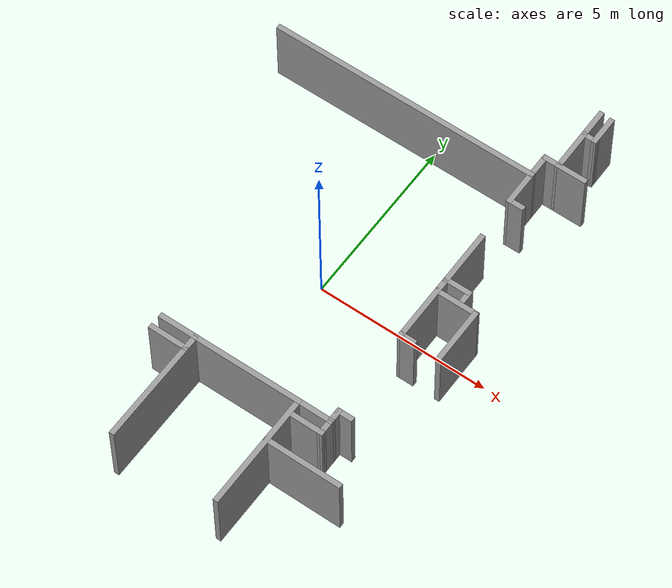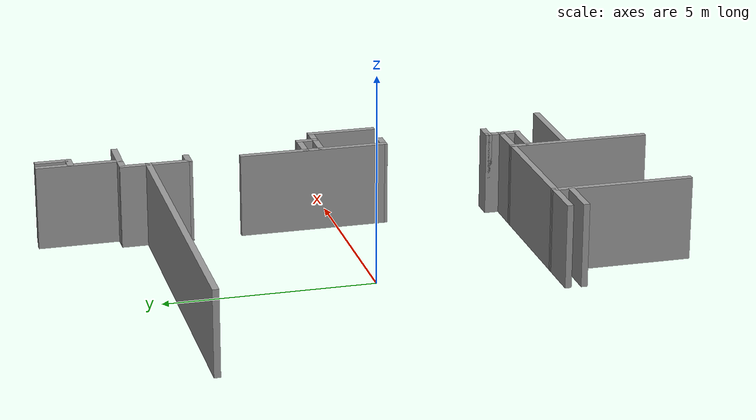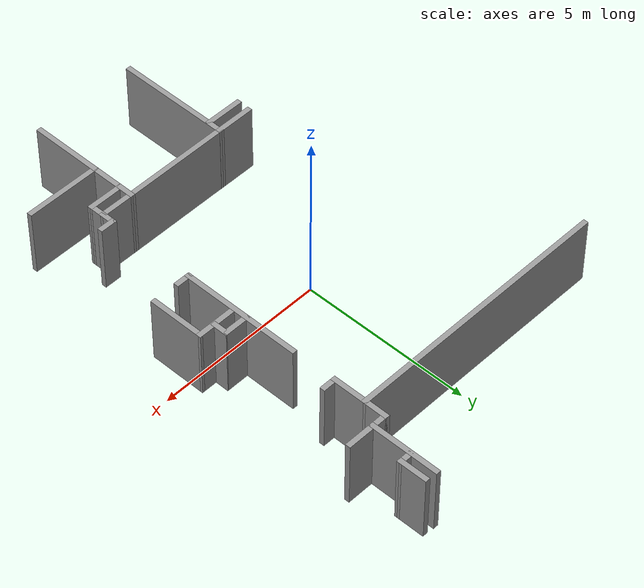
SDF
<sdf version="1.7">
 <model name="HQ">
  <link name="Wall_118">
   <pose>-1.38226 -4.3626 0 0 -0 0</pose>
   <visual name="Wall_118_Visual">
    <pose>0 0 1.25 0 -0 0</pose>
    <geometry><box><size>1.1557 0.15 2</size></box></geometry>
    <material>
     <script><uri>file://media/materials/scripts/gazebo.material</uri><name>Gazebo/Grey</name></script>
     <ambient>1 1 1 1</ambient>
     <shader type="pixel"/>
    </material>
    <meta><layer>0</layer></meta>
   </visual>
   <collision name="Wall_118_Collision">
    <pose>0 0 1.25 0 -0 0</pose>
    <geometry><box><size>1.1557 0.15 2</size></box></geometry>
    <surface>
     <friction>
      <ode><mu>1</mu><mu2>1</mu2><fdir1>0 0 0</fdir1><slip1>0</slip1><slip2>0</slip2></ode>
      <torsional>
       <coefficient>1</coefficient>
       <patch_radius>0</patch_radius>
       <surface_radius>0</surface_radius>
       <use_patch_radius>1</use_patch_radius>
       <ode><slip>0</slip></ode>
      </torsional>
     </friction>
     <bounce><restitution_coefficient>0</restitution_coefficient><threshold>1e+06</threshold></bounce>
     <contact>
      <collide_without_contact>0</collide_without_contact>
      <collide_without_contact_bitmask>1</collide_without_contact_bitmask>
      <collide_bitmask>1</collide_bitmask>
      <ode>
       <soft_cfm>0</soft_cfm>
       <soft_erp>0.2</soft_erp>
       <kp>1e+13</kp>
       <kd>1</kd>
       <max_vel>0.01</max_vel>
       <min_depth>0</min_depth>
      </ode>
      <bullet>
       <split_impulse>1</split_impulse>
       <split_impulse_penetration_threshold>-0.01</split_impulse_penetration_threshold>
       <soft_cfm>0</soft_cfm>
       <soft_erp>0.2</soft_erp>
       <kp>1e+13</kp>
       <kd>1</kd>
      </bullet>
     </contact>
    </surface>
   </collision>
  </link>
  <link name="Wall_120">
   <pose>-1.36439 -3.98262 0 0 0 -3.13781</pose>
   <visual name="Wall_120_Visual">
    <pose>0 0 1.25 0 -0 0</pose>
    <geometry><box><size>1.16116 0.15 2</size></box></geometry>
    <material>
     <script><uri>file://media/materials/scripts/gazebo.material</uri><name>Gazebo/Grey</name></script>
     <ambient>1 1 1 1</ambient>
     <shader type="pixel"/>
    </material>
    <meta><layer>0</layer></meta>
   </visual>
   <collision name="Wall_120_Collision">
    <pose>0 0 1.25 0 -0 0</pose>
    <geometry><box><size>1.16116 0.15 2</size></box></geometry>
    <surface>
     <friction>
      <ode><mu>1</mu><mu2>1</mu2><fdir1>0 0 0</fdir1><slip1>0</slip1><slip2>0</slip2></ode>
      <torsional>
       <coefficient>1</coefficient>
       <patch_radius>0</patch_radius>
       <surface_radius>0</surface_radius>
       <use_patch_radius>1</use_patch_radius>
       <ode><slip>0</slip></ode>
      </torsional>
     </friction>
     <bounce><restitution_coefficient>0</restitution_coefficient><threshold>1e+06</threshold></bounce>
     <contact>
      <collide_without_contact>0</collide_without_contact>
      <collide_without_contact_bitmask>1</collide_without_contact_bitmask>
      <collide_bitmask>1</collide_bitmask>
      <ode>
       <soft_cfm>0</soft_cfm>
       <soft_erp>0.2</soft_erp>
       <kp>1e+13</kp>
       <kd>1</kd>
       <max_vel>0.01</max_vel>
       <min_depth>0</min_depth>
      </ode>
      <bullet>
       <split_impulse>1</split_impulse>
       <split_impulse_penetration_threshold>-0.01</split_impulse_penetration_threshold>
       <soft_cfm>0</soft_cfm>
       <soft_erp>0.2</soft_erp>
       <kp>1e+13</kp>
       <kd>1</kd>
      </bullet>
     </contact>
    </surface>
   </collision>
  </link>
  <link name="Wall_171">
   <pose>3.16808 0.700941 0 0 -0 1.57282</pose>
   <visual name="Wall_171_Visual">
    <pose>0 0 1.25 0 -0 0</pose>
    <geometry><box><size>3.58693 0.15 2</size></box></geometry>
    <material>
     <script><uri>file://media/materials/scripts/gazebo.material</uri><name>Gazebo/Grey</name></script>
     <ambient>1 1 1 1</ambient>
     <shader type="pixel"/>
    </material>
    <meta><layer>0</layer></meta>
   </visual>
   <collision name="Wall_171_Collision">
    <pose>0 0 1.25 0 -0 0</pose>
    <geometry><box><size>3.58693 0.15 2</size></box></geometry>
    <surface>
     <friction>
      <ode><mu>1</mu><mu2>1</mu2><fdir1>0 0 0</fdir1><slip1>0</slip1><slip2>0</slip2></ode>
      <torsional>
       <coefficient>1</coefficient>
       <patch_radius>0</patch_radius>
       <surface_radius>0</surface_radius>
       <use_patch_radius>1</use_patch_radius>
       <ode><slip>0</slip></ode>
      </torsional>
     </friction>
     <bounce><restitution_coefficient>0</restitution_coefficient><threshold>1e+06</threshold></bounce>
     <contact>
      <collide_without_contact>0</collide_without_contact>
      <collide_without_contact_bitmask>1</collide_without_contact_bitmask>
      <collide_bitmask>1</collide_bitmask>
      <ode>
       <soft_cfm>0</soft_cfm>
       <soft_erp>0.2</soft_erp>
       <kp>1e+13</kp>
       <kd>1</kd>
       <max_vel>0.01</max_vel>
       <min_depth>0</min_depth>
      </ode>
      <bullet>
       <split_impulse>1</split_impulse>
       <split_impulse_penetration_threshold>-0.01</split_impulse_penetration_threshold>
       <soft_cfm>0</soft_cfm>
       <soft_erp>0.2</soft_erp>
       <kp>1e+13</kp>
       <kd>1</kd>
      </bullet>
     </contact>
    </surface>
   </collision>
  </link>
  <link name="Wall_18">
   <pose>2.24118 -5.59568 0 0 -0 1.5708</pose>
   <visual name="Wall_18_Visual">
    <pose>0 0 1.25 0 -0 0</pose>
    <geometry><box><size>3.40471 0.15 2</size></box></geometry>
    <material>
     <script><uri>file://media/materials/scripts/gazebo.material</uri><name>Gazebo/Grey</name></script>
     <ambient>1 1 1 1</ambient>
     <shader type="pixel"/>
    </material>
    <meta><layer>0</layer></meta>
   </visual>
   <collision name="Wall_18_Collision">
    <pose>0 0 1.25 0 -0 0</pose>
    <geometry><box><size>3.40471 0.15 2</size></box></geometry>
    <surface>
     <friction>
      <ode><mu>1</mu><mu2>1</mu2><fdir1>0 0 0</fdir1><slip1>0</slip1><slip2>0</slip2></ode>
      <torsional>
       <coefficient>1</coefficient>
       <patch_radius>0</patch_radius>
       <surface_radius>0</surface_radius>
       <use_patch_radius>1</use_patch_radius>
       <ode><slip>0</slip></ode>
      </torsional>
     </friction>
     <bounce><restitution_coefficient>0</restitution_coefficient><threshold>1e+06</threshold></bounce>
     <contact>
      <collide_without_contact>0</collide_without_contact>
      <collide_without_contact_bitmask>1</collide_without_contact_bitmask>
      <collide_bitmask>1</collide_bitmask>
      <ode>
       <soft_cfm>0</soft_cfm>
       <soft_erp>0.2</soft_erp>
       <kp>1e+13</kp>
       <kd>1</kd>
       <max_vel>0.01</max_vel>
       <min_depth>0</min_depth>
      </ode>
      <bullet>
       <split_impulse>1</split_impulse>
       <split_impulse_penetration_threshold>-0.01</split_impulse_penetration_threshold>
       <soft_cfm>0</soft_cfm>
       <soft_erp>0.2</soft_erp>
       <kp>1e+13</kp>
       <kd>1</kd>
      </bullet>
     </contact>
    </surface>
   </collision>
  </link>
  <link name="Wall_19">
   <pose>2.71265 -3.96834 0 0 -0 0</pose>
   <visual name="Wall_19_Visual">
    <pose>0 0 1.25 0 -0 0</pose>
    <geometry><box><size>1.09306 0.15 2</size></box></geometry>
    <material>
     <script><uri>file://media/materials/scripts/gazebo.material</uri><name>Gazebo/Grey</name></script>
     <ambient>1 1 1 1</ambient>
     <shader type="pixel"/>
    </material>
    <meta><layer>0</layer></meta>
   </visual>
   <collision name="Wall_19_Collision">
    <pose>0 0 1.25 0 -0 0</pose>
    <geometry><box><size>1.09306 0.15 2</size></box></geometry>
    <surface>
     <friction>
      <ode><mu>1</mu><mu2>1</mu2><fdir1>0 0 0</fdir1><slip1>0</slip1><slip2>0</slip2></ode>
      <torsional>
       <coefficient>1</coefficient>
       <patch_radius>0</patch_radius>
       <surface_radius>0</surface_radius>
       <use_patch_radius>1</use_patch_radius>
       <ode><slip>0</slip></ode>
      </torsional>
     </friction>
     <bounce><restitution_coefficient>0</restitution_coefficient><threshold>1e+06</threshold></bounce>
     <contact>
      <collide_without_contact>0</collide_without_contact>
      <collide_without_contact_bitmask>1</collide_without_contact_bitmask>
      <collide_bitmask>1</collide_bitmask>
      <ode>
       <soft_cfm>0</soft_cfm>
       <soft_erp>0.2</soft_erp>
       <kp>1e+13</kp>
       <kd>1</kd>
       <max_vel>0.01</max_vel>
       <min_depth>0</min_depth>
      </ode>
      <bullet>
       <split_impulse>1</split_impulse>
       <split_impulse_penetration_threshold>-0.01</split_impulse_penetration_threshold>
       <soft_cfm>0</soft_cfm>
       <soft_erp>0.2</soft_erp>
       <kp>1e+13</kp>
       <kd>1</kd>
      </bullet>
     </contact>
    </surface>
   </collision>
  </link>
  <link name="Wall_192">
   <pose>3.34656 -1.01752 0 0 -0 0</pose>
   <visual name="Wall_192_Visual">
    <pose>0 0 1.25 0 -0 0</pose>
    <geometry><box><size>0.5 0.15 2</size></box></geometry>
    <material>
     <script><uri>file://media/materials/scripts/gazebo.material</uri><name>Gazebo/Grey</name></script>
     <ambient>1 1 1 1</ambient>
     <shader type="pixel"/>
    </material>
    <meta><layer>0</layer></meta>
   </visual>
   <collision name="Wall_192_Collision">
    <pose>0 0 1.25 0 -0 0</pose>
    <geometry><box><size>0.5 0.15 2</size></box></geometry>
    <surface>
     <friction>
      <ode><mu>1</mu><mu2>1</mu2><fdir1>0 0 0</fdir1><slip1>0</slip1><slip2>0</slip2></ode>
      <torsional>
       <coefficient>1</coefficient>
       <patch_radius>0</patch_radius>
       <surface_radius>0</surface_radius>
       <use_patch_radius>1</use_patch_radius>
       <ode><slip>0</slip></ode>
      </torsional>
     </friction>
     <bounce><restitution_coefficient>0</restitution_coefficient><threshold>1e+06</threshold></bounce>
     <contact>
      <collide_without_contact>0</collide_without_contact>
      <collide_without_contact_bitmask>1</collide_without_contact_bitmask>
      <collide_bitmask>1</collide_bitmask>
      <ode>
       <soft_cfm>0</soft_cfm>
       <soft_erp>0.2</soft_erp>
       <kp>1e+13</kp>
       <kd>1</kd>
       <max_vel>0.01</max_vel>
       <min_depth>0</min_depth>
      </ode>
      <bullet>
       <split_impulse>1</split_impulse>
       <split_impulse_penetration_threshold>-0.01</split_impulse_penetration_threshold>
       <soft_cfm>0</soft_cfm>
       <soft_erp>0.2</soft_erp>
       <kp>1e+13</kp>
       <kd>1</kd>
      </bullet>
     </contact>
    </surface>
   </collision>
  </link>
  <link name="Wall_198">
   <pose>3.74081 0.511977 0 0 -0 0</pose>
   <visual name="Wall_198_Visual">
    <pose>0 0 1.25 0 -0 0</pose>
    <geometry><box><size>1.2655 0.15 2</size></box></geometry>
    <material>
     <script><uri>file://media/materials/scripts/gazebo.material</uri><name>Gazebo/Grey</name></script>
     <ambient>1 1 1 1</ambient>
     <shader type="pixel"/>
    </material>
    <meta><layer>0</layer></meta>
   </visual>
   <collision name="Wall_198_Collision">
    <pose>0 0 1.25 0 -0 0</pose>
    <geometry><box><size>1.2655 0.15 2</size></box></geometry>
    <surface>
     <friction>
      <ode><mu>1</mu><mu2>1</mu2><fdir1>0 0 0</fdir1><slip1>0</slip1><slip2>0</slip2></ode>
      <torsional>
       <coefficient>1</coefficient>
       <patch_radius>0</patch_radius>
       <surface_radius>0</surface_radius>
       <use_patch_radius>1</use_patch_radius>
       <ode><slip>0</slip></ode>
      </torsional>
     </friction>
     <bounce><restitution_coefficient>0</restitution_coefficient><threshold>1e+06</threshold></bounce>
     <contact>
      <collide_without_contact>0</collide_without_contact>
      <collide_without_contact_bitmask>1</collide_without_contact_bitmask>
      <collide_bitmask>1</collide_bitmask>
      <ode>
       <soft_cfm>0</soft_cfm>
       <soft_erp>0.2</soft_erp>
       <kp>1e+13</kp>
       <kd>1</kd>
       <max_vel>0.01</max_vel>
       <min_depth>0</min_depth>
      </ode>
      <bullet>
       <split_impulse>1</split_impulse>
       <split_impulse_penetration_threshold>-0.01</split_impulse_penetration_threshold>
       <soft_cfm>0</soft_cfm>
       <soft_erp>0.2</soft_erp>
       <kp>1e+13</kp>
       <kd>1</kd>
      </bullet>
     </contact>
    </surface>
   </collision>
  </link>
  <link name="Wall_20">
   <pose>3.18412 -3.80105 0 0 -0 1.5708</pose>
   <visual name="Wall_20_Visual">
    <pose>0 0 1.25 0 -0 0</pose>
    <geometry><box><size>0.484593 0.15 2</size></box></geometry>
    <material>
     <script><uri>file://media/materials/scripts/gazebo.material</uri><name>Gazebo/Grey</name></script>
     <ambient>1 1 1 1</ambient>
     <shader type="pixel"/>
    </material>
    <meta><layer>0</layer></meta>
   </visual>
   <collision name="Wall_20_Collision">
    <pose>0 0 1.25 0 -0 0</pose>
    <geometry><box><size>0.484593 0.15 2</size></box></geometry>
    <surface>
     <friction>
      <ode><mu>1</mu><mu2>1</mu2><fdir1>0 0 0</fdir1><slip1>0</slip1><slip2>0</slip2></ode>
      <torsional>
       <coefficient>1</coefficient>
       <patch_radius>0</patch_radius>
       <surface_radius>0</surface_radius>
       <use_patch_radius>1</use_patch_radius>
       <ode><slip>0</slip></ode>
      </torsional>
     </friction>
     <bounce><restitution_coefficient>0</restitution_coefficient><threshold>1e+06</threshold></bounce>
     <contact>
      <collide_without_contact>0</collide_without_contact>
      <collide_without_contact_bitmask>1</collide_without_contact_bitmask>
      <collide_bitmask>1</collide_bitmask>
      <ode>
       <soft_cfm>0</soft_cfm>
       <soft_erp>0.2</soft_erp>
       <kp>1e+13</kp>
       <kd>1</kd>
       <max_vel>0.01</max_vel>
       <min_depth>0</min_depth>
      </ode>
      <bullet>
       <split_impulse>1</split_impulse>
       <split_impulse_penetration_threshold>-0.01</split_impulse_penetration_threshold>
       <soft_cfm>0</soft_cfm>
       <soft_erp>0.2</soft_erp>
       <kp>1e+13</kp>
       <kd>1</kd>
      </bullet>
     </contact>
    </surface>
   </collision>
  </link>
  <link name="Wall_202">
   <pose>4.29995 -0.246283 0 0 0 -1.56896</pose>
   <visual name="Wall_202_Visual">
    <pose>0 0 1.25 0 -0 0</pose>
    <geometry><box><size>1.66652 0.15 2</size></box></geometry>
    <material>
     <script><uri>file://media/materials/scripts/gazebo.material</uri><name>Gazebo/Grey</name></script>
     <ambient>1 1 1 1</ambient>
     <shader type="pixel"/>
    </material>
    <meta><layer>0</layer></meta>
   </visual>
   <collision name="Wall_202_Collision">
    <pose>0 0 1.25 0 -0 0</pose>
    <geometry><box><size>1.66652 0.15 2</size></box></geometry>
    <surface>
     <friction>
      <ode><mu>1</mu><mu2>1</mu2><fdir1>0 0 0</fdir1><slip1>0</slip1><slip2>0</slip2></ode>
      <torsional>
       <coefficient>1</coefficient>
       <patch_radius>0</patch_radius>
       <surface_radius>0</surface_radius>
       <use_patch_radius>1</use_patch_radius>
       <ode><slip>0</slip></ode>
      </torsional>
     </friction>
     <bounce><restitution_coefficient>0</restitution_coefficient><threshold>1e+06</threshold></bounce>
     <contact>
      <collide_without_contact>0</collide_without_contact>
      <collide_without_contact_bitmask>1</collide_without_contact_bitmask>
      <collide_bitmask>1</collide_bitmask>
      <ode>
       <soft_cfm>0</soft_cfm>
       <soft_erp>0.2</soft_erp>
       <kp>1e+13</kp>
       <kd>1</kd>
       <max_vel>0.01</max_vel>
       <min_depth>0</min_depth>
      </ode>
      <bullet>
       <split_impulse>1</split_impulse>
       <split_impulse_penetration_threshold>-0.01</split_impulse_penetration_threshold>
       <soft_cfm>0</soft_cfm>
       <soft_erp>0.2</soft_erp>
       <kp>1e+13</kp>
       <kd>1</kd>
      </bullet>
     </contact>
    </surface>
   </collision>
  </link>
  <link name="Wall_204">
   <pose>3.49517 0.905114 0 0 -0 0</pose>
   <inertial>
    <inertia><ixx>0</ixx><ixy>0</ixy><ixz>0</ixz><iyy>0</iyy><iyz>0</iyz><izz>0</izz></inertia>
    <mass>0</mass>
   </inertial>
   <visual name="Wall_204_Visual">
    <pose>0 0 1.25 0 -0 0</pose>
    <geometry><box><size>0.77819 0.15 2</size></box></geometry>
    <material>
     <script><uri>file://media/materials/scripts/gazebo.material</uri><name>Gazebo/Grey</name></script>
     <ambient>1 1 1 1</ambient>
     <shader type="pixel"/>
    </material>
    <meta><layer>0</layer></meta>
   </visual>
   <collision name="Wall_204_Collision">
    <pose>0 0 1.25 0 -0 0</pose>
    <geometry><box><size>0.77819 0.15 2</size></box></geometry>
    <surface>
     <friction>
      <ode><mu>1</mu><mu2>1</mu2><fdir1>0 0 0</fdir1><slip1>0</slip1><slip2>0</slip2></ode>
      <torsional>
       <coefficient>1</coefficient>
       <patch_radius>0</patch_radius>
       <surface_radius>0</surface_radius>
       <use_patch_radius>1</use_patch_radius>
       <ode><slip>0</slip></ode>
      </torsional>
     </friction>
     <bounce><restitution_coefficient>0</restitution_coefficient><threshold>1e+06</threshold></bounce>
     <contact>
      <collide_without_contact>0</collide_without_contact>
      <collide_without_contact_bitmask>1</collide_without_contact_bitmask>
      <collide_bitmask>1</collide_bitmask>
      <ode>
       <soft_cfm>0</soft_cfm>
       <soft_erp>0.2</soft_erp>
       <kp>1e+13</kp>
       <kd>1</kd>
       <max_vel>0.01</max_vel>
       <min_depth>0</min_depth>
      </ode>
      <bullet>
       <split_impulse>1</split_impulse>
       <split_impulse_penetration_threshold>-0.01</split_impulse_penetration_threshold>
       <soft_cfm>0</soft_cfm>
       <soft_erp>0.2</soft_erp>
       <kp>1e+13</kp>
       <kd>1</kd>
      </bullet>
     </contact>
    </surface>
   </collision>
  </link>
  <link name="Wall_205">
   <pose>3.83822 0.719294 0 0 0 -1.5708</pose>
   <visual name="Wall_205_Visual">
    <pose>0 0 1.25 0 -0 0</pose>
    <geometry><box><size>0.52164 0.15 2</size></box></geometry>
    <material>
     <script><uri>file://media/materials/scripts/gazebo.material</uri><name>Gazebo/Grey</name></script>
     <ambient>1 1 1 1</ambient>
     <shader type="pixel"/>
    </material>
    <meta><layer>0</layer></meta>
   </visual>
   <collision name="Wall_205_Collision">
    <pose>0 0 1.25 0 -0 0</pose>
    <geometry><box><size>0.52164 0.15 2</size></box></geometry>
    <surface>
     <friction>
      <ode><mu>1</mu><mu2>1</mu2><fdir1>0 0 0</fdir1><slip1>0</slip1><slip2>0</slip2></ode>
      <torsional>
       <coefficient>1</coefficient>
       <patch_radius>0</patch_radius>
       <surface_radius>0</surface_radius>
       <use_patch_radius>1</use_patch_radius>
       <ode><slip>0</slip></ode>
      </torsional>
     </friction>
     <bounce><restitution_coefficient>0</restitution_coefficient><threshold>1e+06</threshold></bounce>
     <contact>
      <collide_without_contact>0</collide_without_contact>
      <collide_without_contact_bitmask>1</collide_without_contact_bitmask>
      <collide_bitmask>1</collide_bitmask>
      <ode>
       <soft_cfm>0</soft_cfm>
       <soft_erp>0.2</soft_erp>
       <kp>1e+13</kp>
       <kd>1</kd>
       <max_vel>0.01</max_vel>
       <min_depth>0</min_depth>
      </ode>
      <bullet>
       <split_impulse>1</split_impulse>
       <split_impulse_penetration_threshold>-0.01</split_impulse_penetration_threshold>
       <soft_cfm>0</soft_cfm>
       <soft_erp>0.2</soft_erp>
       <kp>1e+13</kp>
       <kd>1</kd>
      </bullet>
     </contact>
    </surface>
   </collision>
  </link>
  <link name="Wall_217">
   <pose>3.12789 4.20563 0 0 0 -1.56588</pose>
   <visual name="Wall_217_Visual">
    <pose>0 0 1.25 0 -0 0</pose>
    <geometry><box><size>1.10451 0.15 2</size></box></geometry>
    <material>
     <script><uri>file://media/materials/scripts/gazebo.material</uri><name>Gazebo/Grey</name></script>
     <ambient>1 1 1 1</ambient>
     <shader type="pixel"/>
    </material>
    <meta><layer>0</layer></meta>
   </visual>
   <collision name="Wall_217_Collision">
    <pose>0 0 1.25 0 -0 0</pose>
    <geometry><box><size>1.10451 0.15 2</size></box></geometry>
    <surface>
     <friction>
      <ode><mu>1</mu><mu2>1</mu2><fdir1>0 0 0</fdir1><slip1>0</slip1><slip2>0</slip2></ode>
      <torsional>
       <coefficient>1</coefficient>
       <patch_radius>0</patch_radius>
       <surface_radius>0</surface_radius>
       <use_patch_radius>1</use_patch_radius>
       <ode><slip>0</slip></ode>
      </torsional>
     </friction>
     <bounce><restitution_coefficient>0</restitution_coefficient><threshold>1e+06</threshold></bounce>
     <contact>
      <collide_without_contact>0</collide_without_contact>
      <collide_without_contact_bitmask>1</collide_without_contact_bitmask>
      <collide_bitmask>1</collide_bitmask>
      <ode>
       <soft_cfm>0</soft_cfm>
       <soft_erp>0.2</soft_erp>
       <kp>1e+13</kp>
       <kd>1</kd>
       <max_vel>0.01</max_vel>
       <min_depth>0</min_depth>
      </ode>
      <bullet>
       <split_impulse>1</split_impulse>
       <split_impulse_penetration_threshold>-0.01</split_impulse_penetration_threshold>
       <soft_cfm>0</soft_cfm>
       <soft_erp>0.2</soft_erp>
       <kp>1e+13</kp>
       <kd>1</kd>
      </bullet>
     </contact>
    </surface>
   </collision>
  </link>
  <link name="Wall_220">
   <pose>3.30523 3.72838 0 0 -0 0</pose>
   <visual name="Wall_220_Visual">
    <pose>0 0 1.25 0 -0 0</pose>
    <geometry><box><size>0.5 0.15 2</size></box></geometry>
    <material>
     <script><uri>file://media/materials/scripts/gazebo.material</uri><name>Gazebo/Grey</name></script>
     <ambient>1 1 1 1</ambient>
     <shader type="pixel"/>
    </material>
    <meta><layer>0</layer></meta>
   </visual>
   <collision name="Wall_220_Collision">
    <pose>0 0 1.25 0 -0 0</pose>
    <geometry><box><size>0.5 0.15 2</size></box></geometry>
    <surface>
     <friction>
      <ode><mu>1</mu><mu2>1</mu2><fdir1>0 0 0</fdir1><slip1>0</slip1><slip2>0</slip2></ode>
      <torsional>
       <coefficient>1</coefficient>
       <patch_radius>0</patch_radius>
       <surface_radius>0</surface_radius>
       <use_patch_radius>1</use_patch_radius>
       <ode><slip>0</slip></ode>
      </torsional>
     </friction>
     <bounce><restitution_coefficient>0</restitution_coefficient><threshold>1e+06</threshold></bounce>
     <contact>
      <collide_without_contact>0</collide_without_contact>
      <collide_without_contact_bitmask>1</collide_without_contact_bitmask>
      <collide_bitmask>1</collide_bitmask>
      <ode>
       <soft_cfm>0</soft_cfm>
       <soft_erp>0.2</soft_erp>
       <kp>1e+13</kp>
       <kd>1</kd>
       <max_vel>0.01</max_vel>
       <min_depth>0</min_depth>
      </ode>
      <bullet>
       <split_impulse>1</split_impulse>
       <split_impulse_penetration_threshold>-0.01</split_impulse_penetration_threshold>
       <soft_cfm>0</soft_cfm>
       <soft_erp>0.2</soft_erp>
       <kp>1e+13</kp>
       <kd>1</kd>
      </bullet>
     </contact>
    </surface>
   </collision>
  </link>
  <link name="Wall_224">
   <pose>3.91789 5.30063 0 0 0 -0.005876</pose>
   <visual name="Wall_224_Visual">
    <pose>0 0 1.25 0 -0 0</pose>
    <geometry><box><size>0.914701 0.15 2</size></box></geometry>
    <material>
     <script><uri>file://media/materials/scripts/gazebo.material</uri><name>Gazebo/Grey</name></script>
     <ambient>1 1 1 1</ambient>
     <shader type="pixel"/>
    </material>
    <meta><layer>0</layer></meta>
   </visual>
   <collision name="Wall_224_Collision">
    <pose>0 0 1.25 0 -0 0</pose>
    <geometry><box><size>0.914701 0.15 2</size></box></geometry>
    <surface>
     <friction>
      <ode><mu>1</mu><mu2>1</mu2><fdir1>0 0 0</fdir1><slip1>0</slip1><slip2>0</slip2></ode>
      <torsional>
       <coefficient>1</coefficient>
       <patch_radius>0</patch_radius>
       <surface_radius>0</surface_radius>
       <use_patch_radius>1</use_patch_radius>
       <ode><slip>0</slip></ode>
      </torsional>
     </friction>
     <bounce><restitution_coefficient>0</restitution_coefficient><threshold>1e+06</threshold></bounce>
     <contact>
      <collide_without_contact>0</collide_without_contact>
      <collide_without_contact_bitmask>1</collide_without_contact_bitmask>
      <collide_bitmask>1</collide_bitmask>
      <ode>
       <soft_cfm>0</soft_cfm>
       <soft_erp>0.2</soft_erp>
       <kp>1e+13</kp>
       <kd>1</kd>
       <max_vel>0.01</max_vel>
       <min_depth>0</min_depth>
      </ode>
      <bullet>
       <split_impulse>1</split_impulse>
       <split_impulse_penetration_threshold>-0.01</split_impulse_penetration_threshold>
       <soft_cfm>0</soft_cfm>
       <soft_erp>0.2</soft_erp>
       <kp>1e+13</kp>
       <kd>1</kd>
      </bullet>
     </contact>
    </surface>
   </collision>
  </link>
  <link name="Wall_23">
   <pose>3.3052 -5.26109 0 0 -0 3.14159</pose>
   <visual name="Wall_23_Visual">
    <pose>0 0 1.25 0 -0 0</pose>
    <geometry><box><size>2.25 0.15 2</size></box></geometry>
    <material>
     <script><uri>file://media/materials/scripts/gazebo.material</uri><name>Gazebo/Grey</name></script>
     <ambient>1 1 1 1</ambient>
     <shader type="pixel"/>
    </material>
    <meta><layer>0</layer></meta>
   </visual>
   <collision name="Wall_23_Collision">
    <pose>0 0 1.25 0 -0 0</pose>
    <geometry><box><size>2.25 0.15 2</size></box></geometry>
    <surface>
     <friction>
      <ode><mu>1</mu><mu2>1</mu2><fdir1>0 0 0</fdir1><slip1>0</slip1><slip2>0</slip2></ode>
      <torsional>
       <coefficient>1</coefficient>
       <patch_radius>0</patch_radius>
       <surface_radius>0</surface_radius>
       <use_patch_radius>1</use_patch_radius>
       <ode><slip>0</slip></ode>
      </torsional>
     </friction>
     <bounce><restitution_coefficient>0</restitution_coefficient><threshold>1e+06</threshold></bounce>
     <contact>
      <collide_without_contact>0</collide_without_contact>
      <collide_without_contact_bitmask>1</collide_without_contact_bitmask>
      <collide_bitmask>1</collide_bitmask>
      <ode>
       <soft_cfm>0</soft_cfm>
       <soft_erp>0.2</soft_erp>
       <kp>1e+13</kp>
       <kd>1</kd>
       <max_vel>0.01</max_vel>
       <min_depth>0</min_depth>
      </ode>
      <bullet>
       <split_impulse>1</split_impulse>
       <split_impulse_penetration_threshold>-0.01</split_impulse_penetration_threshold>
       <soft_cfm>0</soft_cfm>
       <soft_erp>0.2</soft_erp>
       <kp>1e+13</kp>
       <kd>1</kd>
      </bullet>
     </contact>
    </surface>
   </collision>
  </link>
  <link name="Wall_235">
   <pose>3.35912 -3.63375 0 0 -0 0</pose>
   <visual name="Wall_235_Visual">
    <pose>0 0 1.25 0 -0 0</pose>
    <geometry><box><size>0.5 0.15 2</size></box></geometry>
    <material>
     <script><uri>file://media/materials/scripts/gazebo.material</uri><name>Gazebo/Grey</name></script>
     <ambient>1 1 1 1</ambient>
     <shader type="pixel"/>
    </material>
    <meta><layer>0</layer></meta>
   </visual>
   <collision name="Wall_235_Collision">
    <pose>0 0 1.25 0 -0 0</pose>
    <geometry><box><size>0.5 0.15 2</size></box></geometry>
    <surface>
     <friction>
      <ode><mu>1</mu><mu2>1</mu2><fdir1>0 0 0</fdir1><slip1>0</slip1><slip2>0</slip2></ode>
      <torsional>
       <coefficient>1</coefficient>
       <patch_radius>0</patch_radius>
       <surface_radius>0</surface_radius>
       <use_patch_radius>1</use_patch_radius>
       <ode><slip>0</slip></ode>
      </torsional>
     </friction>
     <bounce><restitution_coefficient>0</restitution_coefficient><threshold>1e+06</threshold></bounce>
     <contact>
      <collide_without_contact>0</collide_without_contact>
      <collide_without_contact_bitmask>1</collide_without_contact_bitmask>
      <collide_bitmask>1</collide_bitmask>
      <ode>
       <soft_cfm>0</soft_cfm>
       <soft_erp>0.2</soft_erp>
       <kp>1e+13</kp>
       <kd>1</kd>
       <max_vel>0.01</max_vel>
       <min_depth>0</min_depth>
      </ode>
      <bullet>
       <split_impulse>1</split_impulse>
       <split_impulse_penetration_threshold>-0.01</split_impulse_penetration_threshold>
       <soft_cfm>0</soft_cfm>
       <soft_erp>0.2</soft_erp>
       <kp>1e+13</kp>
       <kd>1</kd>
      </bullet>
     </contact>
    </surface>
   </collision>
  </link>
  <link name="Wall_25">
   <pose>0.691182 -3.97576 0 0 0 -3.13681</pose>
   <visual name="Wall_25_Visual">
    <pose>0 0 1.25 0 -0 0</pose>
    <geometry><box><size>3.25 0.15 2</size></box></geometry>
    <material>
     <script><uri>file://media/materials/scripts/gazebo.material</uri><name>Gazebo/Grey</name></script>
     <ambient>1 1 1 1</ambient>
     <shader type="pixel"/>
    </material>
    <meta><layer>0</layer></meta>
   </visual>
   <collision name="Wall_25_Collision">
    <pose>0 0 1.25 0 -0 0</pose>
    <geometry><box><size>3.25 0.15 2</size></box></geometry>
    <surface>
     <friction>
      <ode><mu>1</mu><mu2>1</mu2><fdir1>0 0 0</fdir1><slip1>0</slip1><slip2>0</slip2></ode>
      <torsional>
       <coefficient>1</coefficient>
       <patch_radius>0</patch_radius>
       <surface_radius>0</surface_radius>
       <use_patch_radius>1</use_patch_radius>
       <ode><slip>0</slip></ode>
      </torsional>
     </friction>
     <bounce><restitution_coefficient>0</restitution_coefficient><threshold>1e+06</threshold></bounce>
     <contact>
      <collide_without_contact>0</collide_without_contact>
      <collide_without_contact_bitmask>1</collide_without_contact_bitmask>
      <collide_bitmask>1</collide_bitmask>
      <ode>
       <soft_cfm>0</soft_cfm>
       <soft_erp>0.2</soft_erp>
       <kp>1e+13</kp>
       <kd>1</kd>
       <max_vel>0.01</max_vel>
       <min_depth>0</min_depth>
      </ode>
      <bullet>
       <split_impulse>1</split_impulse>
       <split_impulse_penetration_threshold>-0.01</split_impulse_penetration_threshold>
       <soft_cfm>0</soft_cfm>
       <soft_erp>0.2</soft_erp>
       <kp>1e+13</kp>
       <kd>1</kd>
      </bullet>
     </contact>
    </surface>
   </collision>
  </link>
  <link name="Wall_26">
   <pose>-0.860111 -5.60044 0 0 0 -1.57159</pose>
   <visual name="Wall_26_Visual">
    <pose>0 0 1.25 0 -0 0</pose>
    <geometry><box><size>3.38946 0.15 2</size></box></geometry>
    <material>
     <script><uri>file://media/materials/scripts/gazebo.material</uri><name>Gazebo/Grey</name></script>
     <ambient>1 1 1 1</ambient>
     <shader type="pixel"/>
    </material>
    <meta><layer>0</layer></meta>
   </visual>
   <collision name="Wall_26_Collision">
    <pose>0 0 1.25 0 -0 0</pose>
    <geometry><box><size>3.38946 0.15 2</size></box></geometry>
    <surface>
     <friction>
      <ode><mu>1</mu><mu2>1</mu2><fdir1>0 0 0</fdir1><slip1>0</slip1><slip2>0</slip2></ode>
      <torsional>
       <coefficient>1</coefficient>
       <patch_radius>0</patch_radius>
       <surface_radius>0</surface_radius>
       <use_patch_radius>1</use_patch_radius>
       <ode><slip>0</slip></ode>
      </torsional>
     </friction>
     <bounce><restitution_coefficient>0</restitution_coefficient><threshold>1e+06</threshold></bounce>
     <contact>
      <collide_without_contact>0</collide_without_contact>
      <collide_without_contact_bitmask>1</collide_without_contact_bitmask>
      <collide_bitmask>1</collide_bitmask>
      <ode>
       <soft_cfm>0</soft_cfm>
       <soft_erp>0.2</soft_erp>
       <kp>1e+13</kp>
       <kd>1</kd>
       <max_vel>0.01</max_vel>
       <min_depth>0</min_depth>
      </ode>
      <bullet>
       <split_impulse>1</split_impulse>
       <split_impulse_penetration_threshold>-0.01</split_impulse_penetration_threshold>
       <soft_cfm>0</soft_cfm>
       <soft_erp>0.2</soft_erp>
       <kp>1e+13</kp>
       <kd>1</kd>
      </bullet>
     </contact>
    </surface>
   </collision>
  </link>
  <link name="Wall_260">
   <pose>3.70877 6.46205 0 0 -0 0</pose>
   <visual name="Wall_260_Visual">
    <pose>0 0 1.25 0 -0 0</pose>
    <geometry><box><size>0.453029 0.15 2</size></box></geometry>
    <material>
     <script><uri>file://media/materials/scripts/gazebo.material</uri><name>Gazebo/Grey</name></script>
     <ambient>1 1 1 1</ambient>
     <shader type="pixel"/>
    </material>
    <meta><layer>0</layer></meta>
   </visual>
   <collision name="Wall_260_Collision">
    <pose>0 0 1.25 0 -0 0</pose>
    <geometry><box><size>0.453029 0.15 2</size></box></geometry>
    <surface>
     <friction>
      <ode><mu>1</mu><mu2>1</mu2><fdir1>0 0 0</fdir1><slip1>0</slip1><slip2>0</slip2></ode>
      <torsional>
       <coefficient>1</coefficient>
       <patch_radius>0</patch_radius>
       <surface_radius>0</surface_radius>
       <use_patch_radius>1</use_patch_radius>
       <ode><slip>0</slip></ode>
      </torsional>
     </friction>
     <bounce><restitution_coefficient>0</restitution_coefficient><threshold>1e+06</threshold></bounce>
     <contact>
      <collide_without_contact>0</collide_without_contact>
      <collide_without_contact_bitmask>1</collide_without_contact_bitmask>
      <collide_bitmask>1</collide_bitmask>
      <ode>
       <soft_cfm>0</soft_cfm>
       <soft_erp>0.2</soft_erp>
       <kp>1e+13</kp>
       <kd>1</kd>
       <max_vel>0.01</max_vel>
       <min_depth>0</min_depth>
      </ode>
      <bullet>
       <split_impulse>1</split_impulse>
       <split_impulse_penetration_threshold>-0.01</split_impulse_penetration_threshold>
       <soft_cfm>0</soft_cfm>
       <soft_erp>0.2</soft_erp>
       <kp>1e+13</kp>
       <kd>1</kd>
      </bullet>
     </contact>
    </surface>
   </collision>
  </link>
  <link name="Wall_261">
   <pose>3.85743 6.82511 0 0 -0 1.57867</pose>
   <visual name="Wall_261_Visual">
    <pose>0 0 1.25 0 -0 0</pose>
    <geometry><box><size>0.876329 0.15 2</size></box></geometry>
    <material>
     <script><uri>file://media/materials/scripts/gazebo.material</uri><name>Gazebo/Grey</name></script>
     <ambient>1 1 1 1</ambient>
     <shader type="pixel"/>
    </material>
    <meta><layer>0</layer></meta>
   </visual>
   <collision name="Wall_261_Collision">
    <pose>0 0 1.25 0 -0 0</pose>
    <geometry><box><size>0.876329 0.15 2</size></box></geometry>
    <surface>
     <friction>
      <ode><mu>1</mu><mu2>1</mu2><fdir1>0 0 0</fdir1><slip1>0</slip1><slip2>0</slip2></ode>
      <torsional>
       <coefficient>1</coefficient>
       <patch_radius>0</patch_radius>
       <surface_radius>0</surface_radius>
       <use_patch_radius>1</use_patch_radius>
       <ode><slip>0</slip></ode>
      </torsional>
     </friction>
     <bounce><restitution_coefficient>0</restitution_coefficient><threshold>1e+06</threshold></bounce>
     <contact>
      <collide_without_contact>0</collide_without_contact>
      <collide_without_contact_bitmask>1</collide_without_contact_bitmask>
      <collide_bitmask>1</collide_bitmask>
      <ode>
       <soft_cfm>0</soft_cfm>
       <soft_erp>0.2</soft_erp>
       <kp>1e+13</kp>
       <kd>1</kd>
       <max_vel>0.01</max_vel>
       <min_depth>0</min_depth>
      </ode>
      <bullet>
       <split_impulse>1</split_impulse>
       <split_impulse_penetration_threshold>-0.01</split_impulse_penetration_threshold>
       <soft_cfm>0</soft_cfm>
       <soft_erp>0.2</soft_erp>
       <kp>1e+13</kp>
       <kd>1</kd>
      </bullet>
     </contact>
    </surface>
   </collision>
  </link>
  <link name="Wall_265">
   <pose>3.18508 -4.16059 0 0 0 -1.56585</pose>
   <visual name="Wall_265_Visual">
    <pose>0 0 1.25 0 -0 0</pose>
    <geometry><box><size>0.534494 0.15 2</size></box></geometry>
    <material>
     <script><uri>file://media/materials/scripts/gazebo.material</uri><name>Gazebo/Grey</name></script>
     <ambient>1 1 1 1</ambient>
     <shader type="pixel"/>
    </material>
    <meta><layer>0</layer></meta>
   </visual>
   <collision name="Wall_265_Collision">
    <pose>0 0 1.25 0 -0 0</pose>
    <geometry><box><size>0.534494 0.15 2</size></box></geometry>
    <surface>
     <friction>
      <ode><mu>1</mu><mu2>1</mu2><fdir1>0 0 0</fdir1><slip1>0</slip1><slip2>0</slip2></ode>
      <torsional>
       <coefficient>1</coefficient>
       <patch_radius>0</patch_radius>
       <surface_radius>0</surface_radius>
       <use_patch_radius>1</use_patch_radius>
       <ode><slip>0</slip></ode>
      </torsional>
     </friction>
     <bounce><restitution_coefficient>0</restitution_coefficient><threshold>1e+06</threshold></bounce>
     <contact>
      <collide_without_contact>0</collide_without_contact>
      <collide_without_contact_bitmask>1</collide_without_contact_bitmask>
      <collide_bitmask>1</collide_bitmask>
      <ode>
       <soft_cfm>0</soft_cfm>
       <soft_erp>0.2</soft_erp>
       <kp>1e+13</kp>
       <kd>1</kd>
       <max_vel>0.01</max_vel>
       <min_depth>0</min_depth>
      </ode>
      <bullet>
       <split_impulse>1</split_impulse>
       <split_impulse_penetration_threshold>-0.01</split_impulse_penetration_threshold>
       <soft_cfm>0</soft_cfm>
       <soft_erp>0.2</soft_erp>
       <kp>1e+13</kp>
       <kd>1</kd>
      </bullet>
     </contact>
    </surface>
   </collision>
  </link>
  <link name="Wall_267">
   <pose>2.72216 -4.35283 0 0 -0 3.14159</pose>
   <visual name="Wall_267_Visual">
    <pose>0 0 1.25 0 -0 0</pose>
    <geometry><box><size>1.07773 0.15 2</size></box></geometry>
    <material>
     <script><uri>file://media/materials/scripts/gazebo.material</uri><name>Gazebo/Grey</name></script>
     <ambient>1 1 1 1</ambient>
     <shader type="pixel"/>
    </material>
    <meta><layer>0</layer></meta>
   </visual>
   <collision name="Wall_267_Collision">
    <pose>0 0 1.25 0 -0 0</pose>
    <geometry><box><size>1.07773 0.15 2</size></box></geometry>
    <surface>
     <friction>
      <ode><mu>1</mu><mu2>1</mu2><fdir1>0 0 0</fdir1><slip1>0</slip1><slip2>0</slip2></ode>
      <torsional>
       <coefficient>1</coefficient>
       <patch_radius>0</patch_radius>
       <surface_radius>0</surface_radius>
       <use_patch_radius>1</use_patch_radius>
       <ode><slip>0</slip></ode>
      </torsional>
     </friction>
     <bounce><restitution_coefficient>0</restitution_coefficient><threshold>1e+06</threshold></bounce>
     <contact>
      <collide_without_contact>0</collide_without_contact>
      <collide_without_contact_bitmask>1</collide_without_contact_bitmask>
      <collide_bitmask>1</collide_bitmask>
      <ode>
       <soft_cfm>0</soft_cfm>
       <soft_erp>0.2</soft_erp>
       <kp>1e+13</kp>
       <kd>1</kd>
       <max_vel>0.01</max_vel>
       <min_depth>0</min_depth>
      </ode>
      <bullet>
       <split_impulse>1</split_impulse>
       <split_impulse_penetration_threshold>-0.01</split_impulse_penetration_threshold>
       <soft_cfm>0</soft_cfm>
       <soft_erp>0.2</soft_erp>
       <kp>1e+13</kp>
       <kd>1</kd>
      </bullet>
     </contact>
    </surface>
   </collision>
  </link>
  <link name="Wall_4">
   <pose>-0.779458 4.68787 0 0 0 -0.00128</pose>
   <visual name="Wall_4_Visual">
    <pose>0 0 1.25 0 -0 0</pose>
    <geometry><box><size>7.96001 0.15 2</size></box></geometry>
    <material>
     <script><uri>file://media/materials/scripts/gazebo.material</uri><name>Gazebo/Grey</name></script>
     <ambient>1 1 1 1</ambient>
     <shader type="pixel"/>
    </material>
    <meta><layer>0</layer></meta>
   </visual>
   <collision name="Wall_4_Collision">
    <pose>0 0 1.25 0 -0 0</pose>
    <geometry><box><size>7.96001 0.15 2</size></box></geometry>
    <surface>
     <friction>
      <ode><mu>1</mu><mu2>1</mu2><fdir1>0 0 0</fdir1><slip1>0</slip1><slip2>0</slip2></ode>
      <torsional>
       <coefficient>1</coefficient>
       <patch_radius>0</patch_radius>
       <surface_radius>0</surface_radius>
       <use_patch_radius>1</use_patch_radius>
       <ode><slip>0</slip></ode>
      </torsional>
     </friction>
     <bounce><restitution_coefficient>0</restitution_coefficient><threshold>1e+06</threshold></bounce>
     <contact>
      <collide_without_contact>0</collide_without_contact>
      <collide_without_contact_bitmask>1</collide_without_contact_bitmask>
      <collide_bitmask>1</collide_bitmask>
      <ode>
       <soft_cfm>0</soft_cfm>
       <soft_erp>0.2</soft_erp>
       <kp>1e+13</kp>
       <kd>1</kd>
       <max_vel>0.01</max_vel>
       <min_depth>0</min_depth>
      </ode>
      <bullet>
       <split_impulse>1</split_impulse>
       <split_impulse_penetration_threshold>-0.01</split_impulse_penetration_threshold>
       <soft_cfm>0</soft_cfm>
       <soft_erp>0.2</soft_erp>
       <kp>1e+13</kp>
       <kd>1</kd>
      </bullet>
     </contact>
    </surface>
   </collision>
  </link>
  <link name="Wall_6">
   <pose>3.12554 4.99287 0 0 -0 1.5708</pose>
   <visual name="Wall_6_Visual">
    <pose>0 0 1.25 0 -0 0</pose>
    <geometry><box><size>0.77 0.15 2</size></box></geometry>
    <material>
     <script><uri>file://media/materials/scripts/gazebo.material</uri><name>Gazebo/Grey</name></script>
     <ambient>1 1 1 1</ambient>
     <shader type="pixel"/>
    </material>
    <meta><layer>0</layer></meta>
   </visual>
   <collision name="Wall_6_Collision">
    <pose>0 0 1.25 0 -0 0</pose>
    <geometry><box><size>0.77 0.15 2</size></box></geometry>
    <surface>
     <friction>
      <ode><mu>1</mu><mu2>1</mu2><fdir1>0 0 0</fdir1><slip1>0</slip1><slip2>0</slip2></ode>
      <torsional>
       <coefficient>1</coefficient>
       <patch_radius>0</patch_radius>
       <surface_radius>0</surface_radius>
       <use_patch_radius>1</use_patch_radius>
       <ode><slip>0</slip></ode>
      </torsional>
     </friction>
     <bounce><restitution_coefficient>0</restitution_coefficient><threshold>1e+06</threshold></bounce>
     <contact>
      <collide_without_contact>0</collide_without_contact>
      <collide_without_contact_bitmask>1</collide_without_contact_bitmask>
      <collide_bitmask>1</collide_bitmask>
      <ode>
       <soft_cfm>0</soft_cfm>
       <soft_erp>0.2</soft_erp>
       <kp>1e+13</kp>
       <kd>1</kd>
       <max_vel>0.01</max_vel>
       <min_depth>0</min_depth>
      </ode>
      <bullet>
       <split_impulse>1</split_impulse>
       <split_impulse_penetration_threshold>-0.01</split_impulse_penetration_threshold>
       <soft_cfm>0</soft_cfm>
       <soft_erp>0.2</soft_erp>
       <kp>1e+13</kp>
       <kd>1</kd>
      </bullet>
     </contact>
    </surface>
   </collision>
  </link>
  <link name="Wall_7">
   <pose>3.33054 5.30287 0 0 -0 0</pose>
   <visual name="Wall_7_Visual">
    <pose>0 0 1.25 0 -0 0</pose>
    <geometry><box><size>0.56 0.15 2</size></box></geometry>
    <material>
     <script><uri>file://media/materials/scripts/gazebo.material</uri><name>Gazebo/Grey</name></script>
     <ambient>1 1 1 1</ambient>
     <shader type="pixel"/>
    </material>
    <meta><layer>0</layer></meta>
   </visual>
   <collision name="Wall_7_Collision">
    <pose>0 0 1.25 0 -0 0</pose>
    <geometry><box><size>0.56 0.15 2</size></box></geometry>
    <surface>
     <friction>
      <ode><mu>1</mu><mu2>1</mu2><fdir1>0 0 0</fdir1><slip1>0</slip1><slip2>0</slip2></ode>
      <torsional>
       <coefficient>1</coefficient>
       <patch_radius>0</patch_radius>
       <surface_radius>0</surface_radius>
       <use_patch_radius>1</use_patch_radius>
       <ode><slip>0</slip></ode>
      </torsional>
     </friction>
     <bounce><restitution_coefficient>0</restitution_coefficient><threshold>1e+06</threshold></bounce>
     <contact>
      <collide_without_contact>0</collide_without_contact>
      <collide_without_contact_bitmask>1</collide_without_contact_bitmask>
      <collide_bitmask>1</collide_bitmask>
      <ode>
       <soft_cfm>0</soft_cfm>
       <soft_erp>0.2</soft_erp>
       <kp>1e+13</kp>
       <kd>1</kd>
       <max_vel>0.01</max_vel>
       <min_depth>0</min_depth>
      </ode>
      <bullet>
       <split_impulse>1</split_impulse>
       <split_impulse_penetration_threshold>-0.01</split_impulse_penetration_threshold>
       <soft_cfm>0</soft_cfm>
       <soft_erp>0.2</soft_erp>
       <kp>1e+13</kp>
       <kd>1</kd>
      </bullet>
     </contact>
    </surface>
   </collision>
  </link>
  <link name="Wall_8">
   <pose>3.53058 6.25984 0 0 -0 1.57598</pose>
   <visual name="Wall_8_Visual">
    <pose>0 0 1.25 0 -0 0</pose>
    <geometry><box><size>2.06393 0.15 2</size></box></geometry>
    <material>
     <script><uri>file://media/materials/scripts/gazebo.material</uri><name>Gazebo/Grey</name></script>
     <ambient>1 1 1 1</ambient>
     <shader type="pixel"/>
    </material>
    <meta><layer>0</layer></meta>
   </visual>
   <collision name="Wall_8_Collision">
    <pose>0 0 1.25 0 -0 0</pose>
    <geometry><box><size>2.06393 0.15 2</size></box></geometry>
    <surface>
     <friction>
      <ode><mu>1</mu><mu2>1</mu2><fdir1>0 0 0</fdir1><slip1>0</slip1><slip2>0</slip2></ode>
      <torsional>
       <coefficient>1</coefficient>
       <patch_radius>0</patch_radius>
       <surface_radius>0</surface_radius>
       <use_patch_radius>1</use_patch_radius>
       <ode><slip>0</slip></ode>
      </torsional>
     </friction>
     <bounce><restitution_coefficient>0</restitution_coefficient><threshold>1e+06</threshold></bounce>
     <contact>
      <collide_without_contact>0</collide_without_contact>
      <collide_without_contact_bitmask>1</collide_without_contact_bitmask>
      <collide_bitmask>1</collide_bitmask>
      <ode>
       <soft_cfm>0</soft_cfm>
       <soft_erp>0.2</soft_erp>
       <kp>1e+13</kp>
       <kd>1</kd>
       <max_vel>0.01</max_vel>
       <min_depth>0</min_depth>
      </ode>
      <bullet>
       <split_impulse>1</split_impulse>
       <split_impulse_penetration_threshold>-0.01</split_impulse_penetration_threshold>
       <soft_cfm>0</soft_cfm>
       <soft_erp>0.2</soft_erp>
       <kp>1e+13</kp>
       <kd>1</kd>
      </bullet>
     </contact>
    </surface>
   </collision>
  </link>
  <static>1</static>
 </model>
</sdf>
